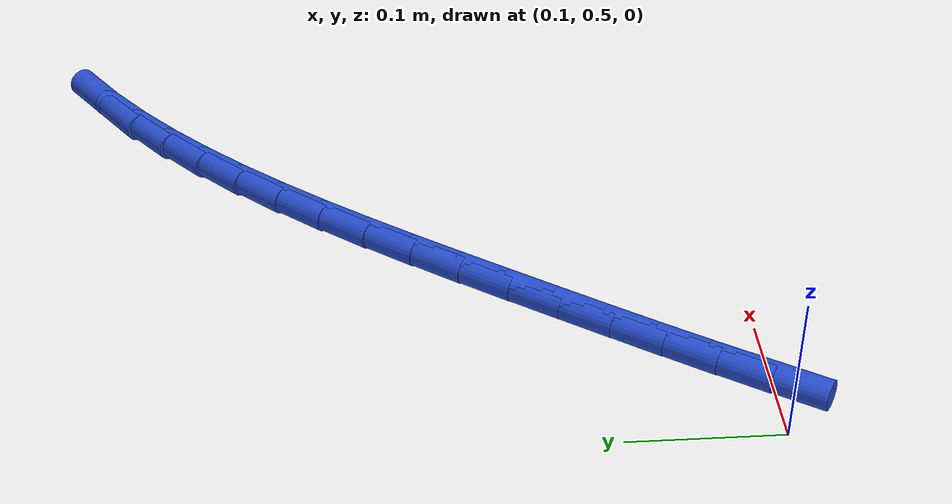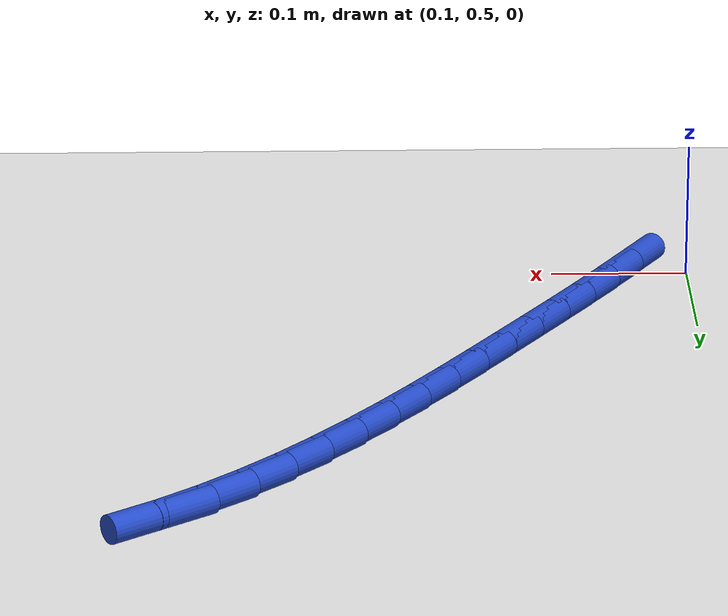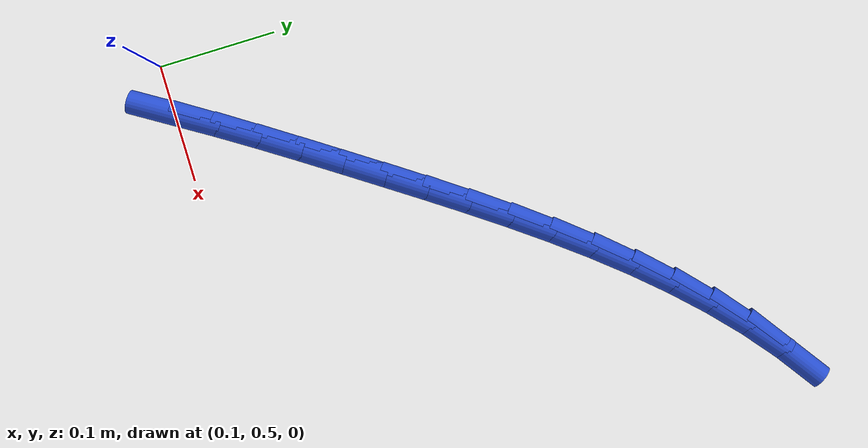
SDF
<sdf version="1.6">
 <world name="default">
  <model name="ground_plane">
   <static>1</static>
   <link name="link">
    <collision name="collision">
     <geometry><plane><normal>0 0 1</normal><size>100 100</size></plane></geometry>
     <surface><friction><ode><mu>100</mu><mu2>50</mu2></ode></friction></surface>
    </collision>
    <visual name="visual">
     <cast_shadows>0</cast_shadows>
     <geometry><plane><normal>0 0 1</normal><size>100 100</size></plane></geometry>
     <material>
      <script><uri>file://media/materials/scripts/gazebo.material</uri><name>Gazebo/WhiteGlow</name></script>
     </material>
    </visual>
   </link>
  </model>
  <model name="line">
   <link name="link_15">
    <pose>0.14369978780490453 0.5033939974664999 0.01 0 1.57 1.0121264742219638</pose>
    <collision name="collision">
     <geometry><cylinder><radius>0.01</radius><length>0.08</length></cylinder></geometry>
    </collision>
    <visual name="visual">
     <material>
      <script><name>Gazebo/Blue</name><uri>file://media/materials/scripts/gazebo.material</uri></script>
     </material>
     <geometry><cylinder><radius>0.01</radius><length>0.08</length></cylinder></geometry>
    </visual>
   </link>
   <link name="link_16">
    <pose>0.16254030520316198 0.5335340947474786 0.01 0 1.57 0.9954315816572497</pose>
    <collision name="collision">
     <geometry><cylinder><radius>0.01</radius><length>0.08</length></cylinder></geometry>
    </collision>
    <visual name="visual">
     <material>
      <script><name>Gazebo/Blue</name><uri>file://media/materials/scripts/gazebo.material</uri></script>
     </material>
     <geometry><cylinder><radius>0.01</radius><length>0.08</length></cylinder></geometry>
    </visual>
   </link>
   <link name="link_17">
    <pose>0.18200332378004966 0.5635435191550762 0.01 0 1.57 0.9831421681235767</pose>
    <collision name="collision">
     <geometry><cylinder><radius>0.01</radius><length>0.08</length></cylinder></geometry>
    </collision>
    <visual name="visual">
     <material>
      <script><name>Gazebo/Blue</name><uri>file://media/materials/scripts/gazebo.material</uri></script>
     </material>
     <geometry><cylinder><radius>0.01</radius><length>0.08</length></cylinder></geometry>
    </visual>
   </link>
   <link name="link_18">
    <pose>0.20196593163646953 0.5935100493348956 0.01 0 1.57 0.9751815598811534</pose>
    <collision name="collision">
     <geometry><cylinder><radius>0.01</radius><length>0.08</length></cylinder></geometry>
    </collision>
    <visual name="visual">
     <material>
      <script><name>Gazebo/Blue</name><uri>file://media/materials/scripts/gazebo.material</uri></script>
     </material>
     <geometry><cylinder><radius>0.01</radius><length>0.08</length></cylinder></geometry>
    </visual>
   </link>
   <link name="link_19">
    <pose>0.22230521687332352 0.6235214639325406 0.01 0 1.57 0.9714374148457662</pose>
    <collision name="collision">
     <geometry><cylinder><radius>0.01</radius><length>0.08</length></cylinder></geometry>
    </collision>
    <visual name="visual">
     <material>
      <script><name>Gazebo/Blue</name><uri>file://media/materials/scripts/gazebo.material</uri></script>
     </material>
     <geometry><cylinder><radius>0.01</radius><length>0.08</length></cylinder></geometry>
    </visual>
   </link>
   <link name="link_20">
    <pose>0.2428989312757951 0.6536646616611193 0.01 0 1.57 0.9686889838224352</pose>
    <collision name="collision">
     <geometry><cylinder><radius>0.01</radius><length>0.08</length></cylinder></geometry>
    </collision>
    <visual name="visual">
     <material>
      <script><name>Gazebo/Blue</name><uri>file://media/materials/scripts/gazebo.material</uri></script>
     </material>
     <geometry><cylinder><radius>0.01</radius><length>0.08</length></cylinder></geometry>
    </visual>
   </link>
   <link name="link_21">
    <pose>0.26369800191545556 0.6839295232476775 0.01 0 1.57 0.9609871302476384</pose>
    <collision name="collision">
     <geometry><cylinder><radius>0.01</radius><length>0.08</length></cylinder></geometry>
    </collision>
    <visual name="visual">
     <material>
      <script><name>Gazebo/Blue</name><uri>file://media/materials/scripts/gazebo.material</uri></script>
     </material>
     <geometry><cylinder><radius>0.01</radius><length>0.08</length></cylinder></geometry>
    </visual>
   </link>
   <link name="link_22">
    <pose>0.2847917908375716 0.7141223881854467 0.01 0 1.57 0.9476461623980174</pose>
    <collision name="collision">
     <geometry><cylinder><radius>0.01</radius><length>0.08</length></cylinder></geometry>
    </collision>
    <visual name="visual">
     <material>
      <script><name>Gazebo/Blue</name><uri>file://media/materials/scripts/gazebo.material</uri></script>
     </material>
     <geometry><cylinder><radius>0.01</radius><length>0.08</length></cylinder></geometry>
    </visual>
   </link>
   <link name="link_23">
    <pose>0.30628506323996757 0.7440291740067225 0.01 0 1.57 0.9285466581791092</pose>
    <collision name="collision">
     <geometry><cylinder><radius>0.01</radius><length>0.08</length></cylinder></geometry>
    </collision>
    <visual name="visual">
     <material>
      <script><name>Gazebo/Blue</name><uri>file://media/materials/scripts/gazebo.material</uri></script>
     </material>
     <geometry><cylinder><radius>0.01</radius><length>0.08</length></cylinder></geometry>
    </visual>
   </link>
   <link name="link_24">
    <pose>0.3282825843204676 0.7734357982438003 0.01 0 1.57 0.9034812197182757</pose>
    <collision name="collision">
     <geometry><cylinder><radius>0.01</radius><length>0.08</length></cylinder></geometry>
    </collision>
    <visual name="visual">
     <material>
      <script><name>Gazebo/Blue</name><uri>file://media/materials/scripts/gazebo.material</uri></script>
     </material>
     <geometry><cylinder><radius>0.01</radius><length>0.08</length></cylinder></geometry>
    </visual>
   </link>
   <link name="link_25">
    <pose>0.35088911927689564 0.8021281784289751 0.01 0 1.57 0.8721679899453262</pose>
    <collision name="collision">
     <geometry><cylinder><radius>0.01</radius><length>0.08</length></cylinder></geometry>
    </collision>
    <visual name="visual">
     <material>
      <script><name>Gazebo/Blue</name><uri>file://media/materials/scripts/gazebo.material</uri></script>
     </material>
     <geometry><cylinder><radius>0.01</radius><length>0.08</length></cylinder></geometry>
    </visual>
   </link>
   <link name="link_26">
    <pose>0.37420943330707607 0.8298922320945429 0.01 0 1.57 0.8342709908947274</pose>
    <collision name="collision">
     <geometry><cylinder><radius>0.01</radius><length>0.08</length></cylinder></geometry>
    </collision>
    <visual name="visual">
     <material>
      <script><name>Gazebo/Blue</name><uri>file://media/materials/scripts/gazebo.material</uri></script>
     </material>
     <geometry><cylinder><radius>0.01</radius><length>0.08</length></cylinder></geometry>
    </visual>
   </link>
   <link name="link_27">
    <pose>0.39834829160883267 0.8565138767727982 0.01 0 1.57 0.7894314468583911</pose>
    <collision name="collision">
     <geometry><cylinder><radius>0.01</radius><length>0.08</length></cylinder></geometry>
    </collision>
    <visual name="visual">
     <material>
      <script><name>Gazebo/Blue</name><uri>file://media/materials/scripts/gazebo.material</uri></script>
     </material>
     <geometry><cylinder><radius>0.01</radius><length>0.08</length></cylinder></geometry>
    </visual>
   </link>
   <link name="link_28">
    <pose>0.42341045937999 0.8817790299960372 0.01 0 1.57 0.7373149020363247</pose>
    <collision name="collision">
     <geometry><cylinder><radius>0.01</radius><length>0.08</length></cylinder></geometry>
    </collision>
    <visual name="visual">
     <material>
      <script><name>Gazebo/Blue</name><uri>file://media/materials/scripts/gazebo.material</uri></script>
     </material>
     <geometry><cylinder><radius>0.01</radius><length>0.08</length></cylinder></geometry>
    </visual>
   </link>
   <link name="link_29">
    <pose>0.44950070181837204 0.9054736092965548 0.01 0 1.57 0.6776784548741763</pose>
    <collision name="collision">
     <geometry><cylinder><radius>0.01</radius><length>0.08</length></cylinder></geometry>
    </collision>
    <visual name="visual">
     <material>
      <script><name>Gazebo/Blue</name><uri>file://media/materials/scripts/gazebo.material</uri></script>
     </material>
     <geometry><cylinder><radius>0.01</radius><length>0.08</length></cylinder></geometry>
    </visual>
   </link>
   <link name="link_30">
    <pose>0.4767237841218029 0.9273835322066466 0.01 0 1.57 0.6104595139282976</pose>
    <collision name="collision">
     <geometry><cylinder><radius>0.01</radius><length>0.08</length></cylinder></geometry>
    </collision>
    <visual name="visual">
     <material>
      <script><name>Gazebo/Blue</name><uri>file://media/materials/scripts/gazebo.material</uri></script>
     </material>
     <geometry><cylinder><radius>0.01</radius><length>0.08</length></cylinder></geometry>
    </visual>
   </link>
  </model>
 </world>
</sdf>
